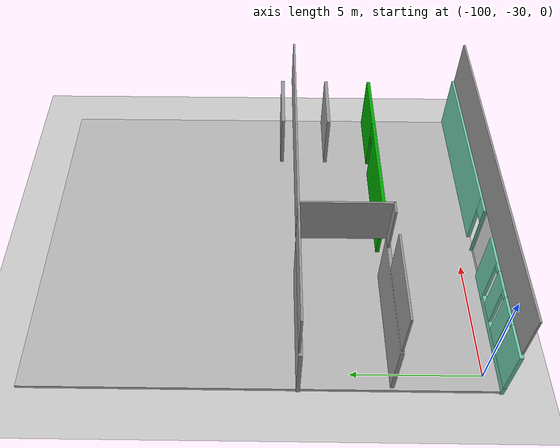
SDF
<sdf version="1.7">
 <world name="default">
  <model name="ground_plane">
   <static>1</static>
   <link name="link">
    <collision name="collision">
     <geometry><plane><normal>0 0 1</normal><size>100 100</size></plane></geometry>
     <surface><friction><ode><mu>100</mu><mu2>50</mu2></ode></friction></surface>
    </collision>
    <visual name="visual">
     <cast_shadows>0</cast_shadows>
     <geometry><plane><normal>0 0 1</normal><size>100 100</size></plane></geometry>
     <material>
      <script><uri>file://media/materials/scripts/gazebo.material</uri><name>Gazebo/Grey</name></script>
     </material>
    </visual>
   </link>
  </model>
  <model name="33333osrf_elevator">
   <link name="Wall_10">
    <pose>3.11003 -4.9485 0 0 -0 0</pose>
    <visual name="Wall_10_Visual_0">
     <meta><layer>0</layer></meta>
     <pose>-1.73626 0 1.3715 0 -0 0</pose>
     <geometry><box><size>4.52747 0.15 2.743</size></box></geometry>
     <material>
      <script><uri>file://media/materials/scripts/gazebo.material</uri><name>Gazebo/Grey</name></script>
      <ambient>0 0.666667 0 1</ambient>
      <shader type="pixel"/>
     </material>
    </visual>
    <visual name="Wall_10_Visual_1">
     <meta><layer>0</layer></meta>
     <pose>2.58694 0 1.3715 0 -0 0</pose>
     <geometry><box><size>2.82611 0.15 2.743</size></box></geometry>
     <material>
      <script><uri>file://media/materials/scripts/gazebo.material</uri><name>Gazebo/Grey</name></script>
      <ambient>0 0.666667 0 1</ambient>
      <shader type="pixel"/>
     </material>
    </visual>
    <visual name="Wall_10_Visual_2">
     <meta><layer>0</layer></meta>
     <pose>0.85068 0 2.3715 0 -0 0</pose>
     <geometry><box><size>0.646413 0.15 0.743</size></box></geometry>
     <material>
      <script><uri>file://media/materials/scripts/gazebo.material</uri><name>Gazebo/Grey</name></script>
      <ambient>0 0.666667 0 1</ambient>
      <shader type="pixel"/>
     </material>
    </visual>
    <collision name="Wall_10_Collision_0">
     <pose>-1.73626 0 1.3715 0 -0 0</pose>
     <geometry><box><size>4.52747 0.15 2.743</size></box></geometry>
     <surface>
      <friction>
       <ode><mu>1</mu><mu2>1</mu2><fdir1>0 0 0</fdir1><slip1>0</slip1><slip2>0</slip2></ode>
       <torsional>
        <coefficient>1</coefficient>
        <patch_radius>0</patch_radius>
        <surface_radius>0</surface_radius>
        <use_patch_radius>1</use_patch_radius>
        <ode><slip>0</slip></ode>
       </torsional>
      </friction>
      <bounce><restitution_coefficient>0</restitution_coefficient><threshold>1e+06</threshold></bounce>
      <contact>
       <collide_without_contact>0</collide_without_contact>
       <collide_without_contact_bitmask>1</collide_without_contact_bitmask>
       <collide_bitmask>1</collide_bitmask>
       <ode>
        <soft_cfm>0</soft_cfm>
        <soft_erp>0.2</soft_erp>
        <kp>1e+13</kp>
        <kd>1</kd>
        <max_vel>0.01</max_vel>
        <min_depth>0</min_depth>
       </ode>
       <bullet>
        <split_impulse>1</split_impulse>
        <split_impulse_penetration_threshold>-0.01</split_impulse_penetration_threshold>
        <soft_cfm>0</soft_cfm>
        <soft_erp>0.2</soft_erp>
        <kp>1e+13</kp>
        <kd>1</kd>
       </bullet>
      </contact>
     </surface>
    </collision>
    <collision name="Wall_10_Collision_1">
     <pose>2.58694 0 1.3715 0 -0 0</pose>
     <geometry><box><size>2.82611 0.15 2.743</size></box></geometry>
     <surface>
      <friction>
       <ode><mu>1</mu><mu2>1</mu2><fdir1>0 0 0</fdir1><slip1>0</slip1><slip2>0</slip2></ode>
       <torsional>
        <coefficient>1</coefficient>
        <patch_radius>0</patch_radius>
        <surface_radius>0</surface_radius>
        <use_patch_radius>1</use_patch_radius>
        <ode><slip>0</slip></ode>
       </torsional>
      </friction>
      <bounce><restitution_coefficient>0</restitution_coefficient><threshold>1e+06</threshold></bounce>
      <contact>
       <collide_without_contact>0</collide_without_contact>
       <collide_without_contact_bitmask>1</collide_without_contact_bitmask>
       <collide_bitmask>1</collide_bitmask>
       <ode>
        <soft_cfm>0</soft_cfm>
        <soft_erp>0.2</soft_erp>
        <kp>1e+13</kp>
        <kd>1</kd>
        <max_vel>0.01</max_vel>
        <min_depth>0</min_depth>
       </ode>
       <bullet>
        <split_impulse>1</split_impulse>
        <split_impulse_penetration_threshold>-0.01</split_impulse_penetration_threshold>
        <soft_cfm>0</soft_cfm>
        <soft_erp>0.2</soft_erp>
        <kp>1e+13</kp>
        <kd>1</kd>
       </bullet>
      </contact>
     </surface>
    </collision>
    <collision name="Wall_10_Collision_2">
     <pose>0.85068 0 2.3715 0 -0 0</pose>
     <geometry><box><size>0.646413 0.15 0.743</size></box></geometry>
     <surface>
      <friction>
       <ode><mu>1</mu><mu2>1</mu2><fdir1>0 0 0</fdir1><slip1>0</slip1><slip2>0</slip2></ode>
       <torsional>
        <coefficient>1</coefficient>
        <patch_radius>0</patch_radius>
        <surface_radius>0</surface_radius>
        <use_patch_radius>1</use_patch_radius>
        <ode><slip>0</slip></ode>
       </torsional>
      </friction>
      <bounce><restitution_coefficient>0</restitution_coefficient><threshold>1e+06</threshold></bounce>
      <contact>
       <collide_without_contact>0</collide_without_contact>
       <collide_without_contact_bitmask>1</collide_without_contact_bitmask>
       <collide_bitmask>1</collide_bitmask>
       <ode>
        <soft_cfm>0</soft_cfm>
        <soft_erp>0.2</soft_erp>
        <kp>1e+13</kp>
        <kd>1</kd>
        <max_vel>0.01</max_vel>
        <min_depth>0</min_depth>
       </ode>
       <bullet>
        <split_impulse>1</split_impulse>
        <split_impulse_penetration_threshold>-0.01</split_impulse_penetration_threshold>
        <soft_cfm>0</soft_cfm>
        <soft_erp>0.2</soft_erp>
        <kp>1e+13</kp>
        <kd>1</kd>
       </bullet>
      </contact>
     </surface>
    </collision>
   </link>
   <link name="Wall_16">
    <pose>-4.68247 -1.4425 0 0 -0 0</pose>
    <visual name="Wall_16_Visual">
     <meta><layer>0</layer></meta>
     <pose>0 0 1.3715 0 -0 0</pose>
     <geometry><box><size>5.12727 0.15 2.743</size></box></geometry>
     <material>
      <script><uri>file://media/materials/scripts/gazebo.material</uri><name>Gazebo/Grey</name></script>
      <ambient>1 1 1 1</ambient>
      <shader type="pixel"/>
     </material>
    </visual>
    <collision name="Wall_16_Collision">
     <pose>0 0 1.3715 0 -0 0</pose>
     <geometry><box><size>5.12727 0.15 2.743</size></box></geometry>
     <surface>
      <friction>
       <ode><mu>1</mu><mu2>1</mu2><fdir1>0 0 0</fdir1><slip1>0</slip1><slip2>0</slip2></ode>
       <torsional>
        <coefficient>1</coefficient>
        <patch_radius>0</patch_radius>
        <surface_radius>0</surface_radius>
        <use_patch_radius>1</use_patch_radius>
        <ode><slip>0</slip></ode>
       </torsional>
      </friction>
      <bounce><restitution_coefficient>0</restitution_coefficient><threshold>1e+06</threshold></bounce>
      <contact>
       <collide_without_contact>0</collide_without_contact>
       <collide_without_contact_bitmask>1</collide_without_contact_bitmask>
       <collide_bitmask>1</collide_bitmask>
       <ode>
        <soft_cfm>0</soft_cfm>
        <soft_erp>0.2</soft_erp>
        <kp>1e+13</kp>
        <kd>1</kd>
        <max_vel>0.01</max_vel>
        <min_depth>0</min_depth>
       </ode>
       <bullet>
        <split_impulse>1</split_impulse>
        <split_impulse_penetration_threshold>-0.01</split_impulse_penetration_threshold>
        <soft_cfm>0</soft_cfm>
        <soft_erp>0.2</soft_erp>
        <kp>1e+13</kp>
        <kd>1</kd>
       </bullet>
      </contact>
     </surface>
    </collision>
   </link>
   <link name="Wall_18">
    <pose>-4.61297 -4.9275 0 0 -0 3.14159</pose>
    <visual name="Wall_18_Visual">
     <meta><layer>0</layer></meta>
     <pose>0 0 1.3715 0 -0 0</pose>
     <geometry><box><size>5 0.15 2.743</size></box></geometry>
     <material>
      <script><uri>file://media/materials/scripts/gazebo.material</uri><name>Gazebo/Grey</name></script>
      <ambient>1 1 1 1</ambient>
      <shader type="pixel"/>
     </material>
    </visual>
    <collision name="Wall_18_Collision">
     <pose>0 0 1.3715 0 -0 0</pose>
     <geometry><box><size>5 0.15 2.743</size></box></geometry>
     <surface>
      <friction>
       <ode><mu>1</mu><mu2>1</mu2><fdir1>0 0 0</fdir1><slip1>0</slip1><slip2>0</slip2></ode>
       <torsional>
        <coefficient>1</coefficient>
        <patch_radius>0</patch_radius>
        <surface_radius>0</surface_radius>
        <use_patch_radius>1</use_patch_radius>
        <ode><slip>0</slip></ode>
       </torsional>
      </friction>
      <bounce><restitution_coefficient>0</restitution_coefficient><threshold>1e+06</threshold></bounce>
      <contact>
       <collide_without_contact>0</collide_without_contact>
       <collide_without_contact_bitmask>1</collide_without_contact_bitmask>
       <collide_bitmask>1</collide_bitmask>
       <ode>
        <soft_cfm>0</soft_cfm>
        <soft_erp>0.2</soft_erp>
        <kp>1e+13</kp>
        <kd>1</kd>
        <max_vel>0.01</max_vel>
        <min_depth>0</min_depth>
       </ode>
       <bullet>
        <split_impulse>1</split_impulse>
        <split_impulse_penetration_threshold>-0.01</split_impulse_penetration_threshold>
        <soft_cfm>0</soft_cfm>
        <soft_erp>0.2</soft_erp>
        <kp>1e+13</kp>
        <kd>1</kd>
       </bullet>
      </contact>
     </surface>
    </collision>
   </link>
   <link name="Wall_23">
    <pose>5.74203 -2.9565 0 0 -0 0</pose>
    <visual name="Wall_23_Visual">
     <meta><layer>0</layer></meta>
     <pose>0 0 1.3715 0 -0 0</pose>
     <geometry><box><size>2.75 0.15 2.743</size></box></geometry>
     <material>
      <script><uri>file://media/materials/scripts/gazebo.material</uri><name>Gazebo/Grey</name></script>
      <ambient>1 1 1 1</ambient>
      <shader type="pixel"/>
     </material>
    </visual>
    <collision name="Wall_23_Collision">
     <pose>0 0 1.3715 0 -0 0</pose>
     <geometry><box><size>2.75 0.15 2.743</size></box></geometry>
     <surface>
      <friction>
       <ode><mu>1</mu><mu2>1</mu2><fdir1>0 0 0</fdir1><slip1>0</slip1><slip2>0</slip2></ode>
       <torsional>
        <coefficient>1</coefficient>
        <patch_radius>0</patch_radius>
        <surface_radius>0</surface_radius>
        <use_patch_radius>1</use_patch_radius>
        <ode><slip>0</slip></ode>
       </torsional>
      </friction>
      <bounce><restitution_coefficient>0</restitution_coefficient><threshold>1e+06</threshold></bounce>
      <contact>
       <collide_without_contact>0</collide_without_contact>
       <collide_without_contact_bitmask>1</collide_without_contact_bitmask>
       <collide_bitmask>1</collide_bitmask>
       <ode>
        <soft_cfm>0</soft_cfm>
        <soft_erp>0.2</soft_erp>
        <kp>1e+13</kp>
        <kd>1</kd>
        <max_vel>0.01</max_vel>
        <min_depth>0</min_depth>
       </ode>
       <bullet>
        <split_impulse>1</split_impulse>
        <split_impulse_penetration_threshold>-0.01</split_impulse_penetration_threshold>
        <soft_cfm>0</soft_cfm>
        <soft_erp>0.2</soft_erp>
        <kp>1e+13</kp>
        <kd>1</kd>
       </bullet>
      </contact>
     </surface>
    </collision>
   </link>
   <link name="Wall_25">
    <pose>5.76203 -0.932495 0 0 -0 0</pose>
    <visual name="Wall_25_Visual">
     <meta><layer>0</layer></meta>
     <pose>0 0 1.3715 0 -0 0</pose>
     <geometry><box><size>2.75 0.15 2.743</size></box></geometry>
     <material>
      <script><uri>file://media/materials/scripts/gazebo.material</uri><name>Gazebo/Grey</name></script>
      <ambient>1 1 1 1</ambient>
      <shader type="pixel"/>
     </material>
    </visual>
    <collision name="Wall_25_Collision">
     <pose>0 0 1.3715 0 -0 0</pose>
     <geometry><box><size>2.75 0.15 2.743</size></box></geometry>
     <surface>
      <friction>
       <ode><mu>1</mu><mu2>1</mu2><fdir1>0 0 0</fdir1><slip1>0</slip1><slip2>0</slip2></ode>
       <torsional>
        <coefficient>1</coefficient>
        <patch_radius>0</patch_radius>
        <surface_radius>0</surface_radius>
        <use_patch_radius>1</use_patch_radius>
        <ode><slip>0</slip></ode>
       </torsional>
      </friction>
      <bounce><restitution_coefficient>0</restitution_coefficient><threshold>1e+06</threshold></bounce>
      <contact>
       <collide_without_contact>0</collide_without_contact>
       <collide_without_contact_bitmask>1</collide_without_contact_bitmask>
       <collide_bitmask>1</collide_bitmask>
       <ode>
        <soft_cfm>0</soft_cfm>
        <soft_erp>0.2</soft_erp>
        <kp>1e+13</kp>
        <kd>1</kd>
        <max_vel>0.01</max_vel>
        <min_depth>0</min_depth>
       </ode>
       <bullet>
        <split_impulse>1</split_impulse>
        <split_impulse_penetration_threshold>-0.01</split_impulse_penetration_threshold>
        <soft_cfm>0</soft_cfm>
        <soft_erp>0.2</soft_erp>
        <kp>1e+13</kp>
        <kd>1</kd>
       </bullet>
      </contact>
     </surface>
    </collision>
   </link>
   <link name="Wall_6">
    <pose>0.00703 -8.9695 0 0 -0 3.14159</pose>
    <visual name="Wall_6_Visual_0">
     <meta><layer>0</layer></meta>
     <pose>-3.60425 0 1.365 0 -0 0</pose>
     <geometry><box><size>7.2915 0.15 2.73</size></box></geometry>
     <material>
      <script><uri>file://media/materials/scripts/gazebo.material</uri><name>Gazebo/Grey</name></script>
      <ambient>0.435294 0.796078 0.67451 1</ambient>
      <shader type="pixel"/>
     </material>
    </visual>
    <visual name="Wall_6_Visual_1">
     <meta><layer>0</layer></meta>
     <pose>0.726241 0 1.365 0 -0 0</pose>
     <geometry><box><size>0.056893 0.15 2.73</size></box></geometry>
     <material>
      <script><uri>file://media/materials/scripts/gazebo.material</uri><name>Gazebo/Grey</name></script>
      <ambient>0.435294 0.796078 0.67451 1</ambient>
      <shader type="pixel"/>
     </material>
    </visual>
    <visual name="Wall_6_Visual_4">
     <meta><layer>0</layer></meta>
     <pose>5.24871 0 0.25 0 -0 0</pose>
     <geometry><box><size>4.00258 0.15 0.5</size></box></geometry>
     <material>
      <script><uri>file://media/materials/scripts/gazebo.material</uri><name>Gazebo/Grey</name></script>
      <ambient>0.435294 0.796078 0.67451 1</ambient>
      <shader type="pixel"/>
     </material>
    </visual>
    <visual name="Wall_6_Visual_2">
     <meta><layer>0</layer></meta>
     <pose>2.65105 0 1.365 0 -0 0</pose>
     <geometry><box><size>1.19273 0.15 2.73</size></box></geometry>
     <material>
      <script><uri>file://media/materials/scripts/gazebo.material</uri><name>Gazebo/Grey</name></script>
      <ambient>0.435294 0.796078 0.67451 1</ambient>
      <shader type="pixel"/>
     </material>
    </visual>
    <visual name="Wall_6_Visual_5">
     <meta><layer>0</layer></meta>
     <pose>4.0419 0 1.615 0 -0 0</pose>
     <geometry><box><size>0.828969 0.15 2.23</size></box></geometry>
     <material>
      <script><uri>file://media/materials/scripts/gazebo.material</uri><name>Gazebo/Grey</name></script>
      <ambient>0.435294 0.796078 0.67451 1</ambient>
      <shader type="pixel"/>
     </material>
    </visual>
    <visual name="Wall_6_Visual_6">
     <meta><layer>0</layer></meta>
     <pose>5.18099 0 1.615 0 -0 0</pose>
     <geometry><box><size>0.819207 0.15 2.23</size></box></geometry>
     <material>
      <script><uri>file://media/materials/scripts/gazebo.material</uri><name>Gazebo/Grey</name></script>
      <ambient>0.435294 0.796078 0.67451 1</ambient>
      <shader type="pixel"/>
     </material>
    </visual>
    <visual name="Wall_6_Visual_7">
     <meta><layer>0</layer></meta>
     <pose>6.58056 0 1.615 0 -0 0</pose>
     <geometry><box><size>1.33888 0.15 2.23</size></box></geometry>
     <material>
      <script><uri>file://media/materials/scripts/gazebo.material</uri><name>Gazebo/Grey</name></script>
      <ambient>0.435294 0.796078 0.67451 1</ambient>
      <shader type="pixel"/>
     </material>
    </visual>
    <visual name="Wall_6_Visual_8">
     <meta><layer>0</layer></meta>
     <pose>0.369648 0 2.365 0 -0 0</pose>
     <geometry><box><size>0.656294 0.15 0.73</size></box></geometry>
     <material>
      <script><uri>file://media/materials/scripts/gazebo.material</uri><name>Gazebo/Grey</name></script>
      <ambient>0.435294 0.796078 0.67451 1</ambient>
      <shader type="pixel"/>
     </material>
    </visual>
    <visual name="Wall_6_Visual_9">
     <meta><layer>0</layer></meta>
     <pose>3.43742 0 2.615 0 -0 0</pose>
     <geometry><box><size>0.38 0.15 0.23</size></box></geometry>
     <material>
      <script><uri>file://media/materials/scripts/gazebo.material</uri><name>Gazebo/Grey</name></script>
      <ambient>0.435294 0.796078 0.67451 1</ambient>
      <shader type="pixel"/>
     </material>
    </visual>
    <visual name="Wall_6_Visual_10">
     <meta><layer>0</layer></meta>
     <pose>4.61389 0 2.615 0 -0 0</pose>
     <geometry><box><size>0.315 0.15 0.23</size></box></geometry>
     <material>
      <script><uri>file://media/materials/scripts/gazebo.material</uri><name>Gazebo/Grey</name></script>
      <ambient>0.435294 0.796078 0.67451 1</ambient>
      <shader type="pixel"/>
     </material>
    </visual>
    <visual name="Wall_6_Visual_11">
     <meta><layer>0</layer></meta>
     <pose>5.75086 0 2.615 0 -0 0</pose>
     <geometry><box><size>0.320532 0.15 0.23</size></box></geometry>
     <material>
      <script><uri>file://media/materials/scripts/gazebo.material</uri><name>Gazebo/Grey</name></script>
      <ambient>0.435294 0.796078 0.67451 1</ambient>
      <shader type="pixel"/>
     </material>
    </visual>
    <collision name="Wall_6_Collision_0">
     <pose>-3.60425 0 1.365 0 -0 0</pose>
     <geometry><box><size>7.2915 0.15 2.73</size></box></geometry>
     <surface>
      <friction>
       <ode><mu>1</mu><mu2>1</mu2><fdir1>0 0 0</fdir1><slip1>0</slip1><slip2>0</slip2></ode>
       <torsional>
        <coefficient>1</coefficient>
        <patch_radius>0</patch_radius>
        <surface_radius>0</surface_radius>
        <use_patch_radius>1</use_patch_radius>
        <ode><slip>0</slip></ode>
       </torsional>
      </friction>
      <bounce><restitution_coefficient>0</restitution_coefficient><threshold>1e+06</threshold></bounce>
      <contact>
       <collide_without_contact>0</collide_without_contact>
       <collide_without_contact_bitmask>1</collide_without_contact_bitmask>
       <collide_bitmask>1</collide_bitmask>
       <ode>
        <soft_cfm>0</soft_cfm>
        <soft_erp>0.2</soft_erp>
        <kp>1e+13</kp>
        <kd>1</kd>
        <max_vel>0.01</max_vel>
        <min_depth>0</min_depth>
       </ode>
       <bullet>
        <split_impulse>1</split_impulse>
        <split_impulse_penetration_threshold>-0.01</split_impulse_penetration_threshold>
        <soft_cfm>0</soft_cfm>
        <soft_erp>0.2</soft_erp>
        <kp>1e+13</kp>
        <kd>1</kd>
       </bullet>
      </contact>
     </surface>
    </collision>
    <collision name="Wall_6_Collision_1">
     <pose>0.726241 0 1.365 0 -0 0</pose>
     <geometry><box><size>0.056893 0.15 2.73</size></box></geometry>
     <surface>
      <friction>
       <ode><mu>1</mu><mu2>1</mu2><fdir1>0 0 0</fdir1><slip1>0</slip1><slip2>0</slip2></ode>
       <torsional>
        <coefficient>1</coefficient>
        <patch_radius>0</patch_radius>
        <surface_radius>0</surface_radius>
        <use_patch_radius>1</use_patch_radius>
        <ode><slip>0</slip></ode>
       </torsional>
      </friction>
      <bounce><restitution_coefficient>0</restitution_coefficient><threshold>1e+06</threshold></bounce>
      <contact>
       <collide_without_contact>0</collide_without_contact>
       <collide_without_contact_bitmask>1</collide_without_contact_bitmask>
       <collide_bitmask>1</collide_bitmask>
       <ode>
        <soft_cfm>0</soft_cfm>
        <soft_erp>0.2</soft_erp>
        <kp>1e+13</kp>
        <kd>1</kd>
        <max_vel>0.01</max_vel>
        <min_depth>0</min_depth>
       </ode>
       <bullet>
        <split_impulse>1</split_impulse>
        <split_impulse_penetration_threshold>-0.01</split_impulse_penetration_threshold>
        <soft_cfm>0</soft_cfm>
        <soft_erp>0.2</soft_erp>
        <kp>1e+13</kp>
        <kd>1</kd>
       </bullet>
      </contact>
     </surface>
    </collision>
    <collision name="Wall_6_Collision_2">
     <pose>2.65105 0 1.365 0 -0 0</pose>
     <geometry><box><size>1.19273 0.15 2.73</size></box></geometry>
     <surface>
      <friction>
       <ode><mu>1</mu><mu2>1</mu2><fdir1>0 0 0</fdir1><slip1>0</slip1><slip2>0</slip2></ode>
       <torsional>
        <coefficient>1</coefficient>
        <patch_radius>0</patch_radius>
        <surface_radius>0</surface_radius>
        <use_patch_radius>1</use_patch_radius>
        <ode><slip>0</slip></ode>
       </torsional>
      </friction>
      <bounce><restitution_coefficient>0</restitution_coefficient><threshold>1e+06</threshold></bounce>
      <contact>
       <collide_without_contact>0</collide_without_contact>
       <collide_without_contact_bitmask>1</collide_without_contact_bitmask>
       <collide_bitmask>1</collide_bitmask>
       <ode>
        <soft_cfm>0</soft_cfm>
        <soft_erp>0.2</soft_erp>
        <kp>1e+13</kp>
        <kd>1</kd>
        <max_vel>0.01</max_vel>
        <min_depth>0</min_depth>
       </ode>
       <bullet>
        <split_impulse>1</split_impulse>
        <split_impulse_penetration_threshold>-0.01</split_impulse_penetration_threshold>
        <soft_cfm>0</soft_cfm>
        <soft_erp>0.2</soft_erp>
        <kp>1e+13</kp>
        <kd>1</kd>
       </bullet>
      </contact>
     </surface>
    </collision>
    <collision name="Wall_6_Collision_4">
     <pose>5.24871 0 0.25 0 -0 0</pose>
     <geometry><box><size>4.00258 0.15 0.5</size></box></geometry>
     <surface>
      <friction>
       <ode><mu>1</mu><mu2>1</mu2><fdir1>0 0 0</fdir1><slip1>0</slip1><slip2>0</slip2></ode>
       <torsional>
        <coefficient>1</coefficient>
        <patch_radius>0</patch_radius>
        <surface_radius>0</surface_radius>
        <use_patch_radius>1</use_patch_radius>
        <ode><slip>0</slip></ode>
       </torsional>
      </friction>
      <bounce><restitution_coefficient>0</restitution_coefficient><threshold>1e+06</threshold></bounce>
      <contact>
       <collide_without_contact>0</collide_without_contact>
       <collide_without_contact_bitmask>1</collide_without_contact_bitmask>
       <collide_bitmask>1</collide_bitmask>
       <ode>
        <soft_cfm>0</soft_cfm>
        <soft_erp>0.2</soft_erp>
        <kp>1e+13</kp>
        <kd>1</kd>
        <max_vel>0.01</max_vel>
        <min_depth>0</min_depth>
       </ode>
       <bullet>
        <split_impulse>1</split_impulse>
        <split_impulse_penetration_threshold>-0.01</split_impulse_penetration_threshold>
        <soft_cfm>0</soft_cfm>
        <soft_erp>0.2</soft_erp>
        <kp>1e+13</kp>
        <kd>1</kd>
       </bullet>
      </contact>
     </surface>
    </collision>
    <collision name="Wall_6_Collision_5">
     <pose>4.0419 0 1.615 0 -0 0</pose>
     <geometry><box><size>0.828969 0.15 2.23</size></box></geometry>
     <surface>
      <friction>
       <ode><mu>1</mu><mu2>1</mu2><fdir1>0 0 0</fdir1><slip1>0</slip1><slip2>0</slip2></ode>
       <torsional>
        <coefficient>1</coefficient>
        <patch_radius>0</patch_radius>
        <surface_radius>0</surface_radius>
        <use_patch_radius>1</use_patch_radius>
        <ode><slip>0</slip></ode>
       </torsional>
      </friction>
      <bounce><restitution_coefficient>0</restitution_coefficient><threshold>1e+06</threshold></bounce>
      <contact>
       <collide_without_contact>0</collide_without_contact>
       <collide_without_contact_bitmask>1</collide_without_contact_bitmask>
       <collide_bitmask>1</collide_bitmask>
       <ode>
        <soft_cfm>0</soft_cfm>
        <soft_erp>0.2</soft_erp>
        <kp>1e+13</kp>
        <kd>1</kd>
        <max_vel>0.01</max_vel>
        <min_depth>0</min_depth>
       </ode>
       <bullet>
        <split_impulse>1</split_impulse>
        <split_impulse_penetration_threshold>-0.01</split_impulse_penetration_threshold>
        <soft_cfm>0</soft_cfm>
        <soft_erp>0.2</soft_erp>
        <kp>1e+13</kp>
        <kd>1</kd>
       </bullet>
      </contact>
     </surface>
    </collision>
    <collision name="Wall_6_Collision_6">
     <pose>5.18099 0 1.615 0 -0 0</pose>
     <geometry><box><size>0.819207 0.15 2.23</size></box></geometry>
     <surface>
      <friction>
       <ode><mu>1</mu><mu2>1</mu2><fdir1>0 0 0</fdir1><slip1>0</slip1><slip2>0</slip2></ode>
       <torsional>
        <coefficient>1</coefficient>
        <patch_radius>0</patch_radius>
        <surface_radius>0</surface_radius>
        <use_patch_radius>1</use_patch_radius>
        <ode><slip>0</slip></ode>
       </torsional>
      </friction>
      <bounce><restitution_coefficient>0</restitution_coefficient><threshold>1e+06</threshold></bounce>
      <contact>
       <collide_without_contact>0</collide_without_contact>
       <collide_without_contact_bitmask>1</collide_without_contact_bitmask>
       <collide_bitmask>1</collide_bitmask>
       <ode>
        <soft_cfm>0</soft_cfm>
        <soft_erp>0.2</soft_erp>
        <kp>1e+13</kp>
        <kd>1</kd>
        <max_vel>0.01</max_vel>
        <min_depth>0</min_depth>
       </ode>
       <bullet>
        <split_impulse>1</split_impulse>
        <split_impulse_penetration_threshold>-0.01</split_impulse_penetration_threshold>
        <soft_cfm>0</soft_cfm>
        <soft_erp>0.2</soft_erp>
        <kp>1e+13</kp>
        <kd>1</kd>
       </bullet>
      </contact>
     </surface>
    </collision>
    <collision name="Wall_6_Collision_8">
     <pose>0.369648 0 2.365 0 -0 0</pose>
     <geometry><box><size>0.656294 0.15 0.73</size></box></geometry>
     <surface>
      <friction>
       <ode><mu>1</mu><mu2>1</mu2><fdir1>0 0 0</fdir1><slip1>0</slip1><slip2>0</slip2></ode>
       <torsional>
        <coefficient>1</coefficient>
        <patch_radius>0</patch_radius>
        <surface_radius>0</surface_radius>
        <use_patch_radius>1</use_patch_radius>
        <ode><slip>0</slip></ode>
       </torsional>
      </friction>
      <bounce><restitution_coefficient>0</restitution_coefficient><threshold>1e+06</threshold></bounce>
      <contact>
       <collide_without_contact>0</collide_without_contact>
       <collide_without_contact_bitmask>1</collide_without_contact_bitmask>
       <collide_bitmask>1</collide_bitmask>
       <ode>
        <soft_cfm>0</soft_cfm>
        <soft_erp>0.2</soft_erp>
        <kp>1e+13</kp>
        <kd>1</kd>
        <max_vel>0.01</max_vel>
        <min_depth>0</min_depth>
       </ode>
       <bullet>
        <split_impulse>1</split_impulse>
        <split_impulse_penetration_threshold>-0.01</split_impulse_penetration_threshold>
        <soft_cfm>0</soft_cfm>
        <soft_erp>0.2</soft_erp>
        <kp>1e+13</kp>
        <kd>1</kd>
       </bullet>
      </contact>
     </surface>
    </collision>
    <collision name="Wall_6_Collision_7">
     <pose>6.58056 0 1.615 0 -0 0</pose>
     <geometry><box><size>1.33888 0.15 2.23</size></box></geometry>
     <surface>
      <friction>
       <ode><mu>1</mu><mu2>1</mu2><fdir1>0 0 0</fdir1><slip1>0</slip1><slip2>0</slip2></ode>
       <torsional>
        <coefficient>1</coefficient>
        <patch_radius>0</patch_radius>
        <surface_radius>0</surface_radius>
        <use_patch_radius>1</use_patch_radius>
        <ode><slip>0</slip></ode>
       </torsional>
      </friction>
      <bounce><restitution_coefficient>0</restitution_coefficient><threshold>1e+06</threshold></bounce>
      <contact>
       <collide_without_contact>0</collide_without_contact>
       <collide_without_contact_bitmask>1</collide_without_contact_bitmask>
       <collide_bitmask>1</collide_bitmask>
       <ode>
        <soft_cfm>0</soft_cfm>
        <soft_erp>0.2</soft_erp>
        <kp>1e+13</kp>
        <kd>1</kd>
        <max_vel>0.01</max_vel>
        <min_depth>0</min_depth>
       </ode>
       <bullet>
        <split_impulse>1</split_impulse>
        <split_impulse_penetration_threshold>-0.01</split_impulse_penetration_threshold>
        <soft_cfm>0</soft_cfm>
        <soft_erp>0.2</soft_erp>
        <kp>1e+13</kp>
        <kd>1</kd>
       </bullet>
      </contact>
     </surface>
    </collision>
    <collision name="Wall_6_Collision_9">
     <pose>3.43742 0 2.615 0 -0 0</pose>
     <geometry><box><size>0.38 0.15 0.23</size></box></geometry>
     <surface>
      <friction>
       <ode><mu>1</mu><mu2>1</mu2><fdir1>0 0 0</fdir1><slip1>0</slip1><slip2>0</slip2></ode>
       <torsional>
        <coefficient>1</coefficient>
        <patch_radius>0</patch_radius>
        <surface_radius>0</surface_radius>
        <use_patch_radius>1</use_patch_radius>
        <ode><slip>0</slip></ode>
       </torsional>
      </friction>
      <bounce><restitution_coefficient>0</restitution_coefficient><threshold>1e+06</threshold></bounce>
      <contact>
       <collide_without_contact>0</collide_without_contact>
       <collide_without_contact_bitmask>1</collide_without_contact_bitmask>
       <collide_bitmask>1</collide_bitmask>
       <ode>
        <soft_cfm>0</soft_cfm>
        <soft_erp>0.2</soft_erp>
        <kp>1e+13</kp>
        <kd>1</kd>
        <max_vel>0.01</max_vel>
        <min_depth>0</min_depth>
       </ode>
       <bullet>
        <split_impulse>1</split_impulse>
        <split_impulse_penetration_threshold>-0.01</split_impulse_penetration_threshold>
        <soft_cfm>0</soft_cfm>
        <soft_erp>0.2</soft_erp>
        <kp>1e+13</kp>
        <kd>1</kd>
       </bullet>
      </contact>
     </surface>
    </collision>
    <collision name="Wall_6_Collision_10">
     <pose>4.61389 0 2.615 0 -0 0</pose>
     <geometry><box><size>0.315 0.15 0.23</size></box></geometry>
     <surface>
      <friction>
       <ode><mu>1</mu><mu2>1</mu2><fdir1>0 0 0</fdir1><slip1>0</slip1><slip2>0</slip2></ode>
       <torsional>
        <coefficient>1</coefficient>
        <patch_radius>0</patch_radius>
        <surface_radius>0</surface_radius>
        <use_patch_radius>1</use_patch_radius>
        <ode><slip>0</slip></ode>
       </torsional>
      </friction>
      <bounce><restitution_coefficient>0</restitution_coefficient><threshold>1e+06</threshold></bounce>
      <contact>
       <collide_without_contact>0</collide_without_contact>
       <collide_without_contact_bitmask>1</collide_without_contact_bitmask>
       <collide_bitmask>1</collide_bitmask>
       <ode>
        <soft_cfm>0</soft_cfm>
        <soft_erp>0.2</soft_erp>
        <kp>1e+13</kp>
        <kd>1</kd>
        <max_vel>0.01</max_vel>
        <min_depth>0</min_depth>
       </ode>
       <bullet>
        <split_impulse>1</split_impulse>
        <split_impulse_penetration_threshold>-0.01</split_impulse_penetration_threshold>
        <soft_cfm>0</soft_cfm>
        <soft_erp>0.2</soft_erp>
        <kp>1e+13</kp>
        <kd>1</kd>
       </bullet>
      </contact>
     </surface>
    </collision>
    <collision name="Wall_6_Collision_11">
     <pose>5.75086 0 2.615 0 -0 0</pose>
     <geometry><box><size>0.320532 0.15 0.23</size></box></geometry>
     <surface>
      <friction>
       <ode><mu>1</mu><mu2>1</mu2><fdir1>0 0 0</fdir1><slip1>0</slip1><slip2>0</slip2></ode>
       <torsional>
        <coefficient>1</coefficient>
        <patch_radius>0</patch_radius>
        <surface_radius>0</surface_radius>
        <use_patch_radius>1</use_patch_radius>
        <ode><slip>0</slip></ode>
       </torsional>
      </friction>
      <bounce><restitution_coefficient>0</restitution_coefficient><threshold>1e+06</threshold></bounce>
      <contact>
       <collide_without_contact>0</collide_without_contact>
       <collide_without_contact_bitmask>1</collide_without_contact_bitmask>
       <collide_bitmask>1</collide_bitmask>
       <ode>
        <soft_cfm>0</soft_cfm>
        <soft_erp>0.2</soft_erp>
        <kp>1e+13</kp>
        <kd>1</kd>
        <max_vel>0.01</max_vel>
        <min_depth>0</min_depth>
       </ode>
       <bullet>
        <split_impulse>1</split_impulse>
        <split_impulse_penetration_threshold>-0.01</split_impulse_penetration_threshold>
        <soft_cfm>0</soft_cfm>
        <soft_erp>0.2</soft_erp>
        <kp>1e+13</kp>
        <kd>1</kd>
       </bullet>
      </contact>
     </surface>
    </collision>
   </link>
   <link name="floor1_part10">
    <pose>-2.39225 -4.89435 3.85794 1.5708 -0 0</pose>
    <visual name="visual">
     <meta><layer>1</layer></meta>
     <geometry><box><size>0.519866 2.0998 0.078</size></box></geometry>
     <material><script><name>Gazebo/Grey</name><uri>__default__</uri></script><shader type="pixel"/></material>
    </visual>
    <collision name="collision">
     <geometry><box><size>0.519866 2.0998 0.078</size></box></geometry>
     <surface>
      <friction>
       <ode><mu>1</mu><mu2>1</mu2><fdir1>0 0 0</fdir1><slip1>0</slip1><slip2>0</slip2></ode>
       <torsional>
        <coefficient>1</coefficient>
        <patch_radius>0</patch_radius>
        <surface_radius>0</surface_radius>
        <use_patch_radius>1</use_patch_radius>
        <ode><slip>0</slip></ode>
       </torsional>
      </friction>
      <bounce><restitution_coefficient>0</restitution_coefficient><threshold>1e+06</threshold></bounce>
      <contact>
       <collide_without_contact>0</collide_without_contact>
       <collide_without_contact_bitmask>1</collide_without_contact_bitmask>
       <collide_bitmask>1</collide_bitmask>
       <ode>
        <soft_cfm>0</soft_cfm>
        <soft_erp>0.2</soft_erp>
        <kp>1e+13</kp>
        <kd>1</kd>
        <max_vel>0.01</max_vel>
        <min_depth>0</min_depth>
       </ode>
       <bullet>
        <split_impulse>1</split_impulse>
        <split_impulse_penetration_threshold>-0.01</split_impulse_penetration_threshold>
        <soft_cfm>0</soft_cfm>
        <soft_erp>0.2</soft_erp>
        <kp>1e+13</kp>
        <kd>1</kd>
       </bullet>
      </contact>
     </surface>
    </collision>
   </link>
   <link name="floor1_part11">
    <pose>-2.17305 -3.18058 3.85794 1.5708 0 -1.5708</pose>
    <visual name="visual">
     <meta><layer>1</layer></meta>
     <geometry><box><size>3.4917 2.0998 0.078</size></box></geometry>
     <material><script><name>Gazebo/Grey</name><uri>__default__</uri></script><shader type="pixel"/></material>
    </visual>
    <collision name="collision">
     <geometry><box><size>3.4917 2.0998 0.078</size></box></geometry>
     <surface>
      <friction>
       <ode><mu>1</mu><mu2>1</mu2><fdir1>0 0 0</fdir1><slip1>0</slip1><slip2>0</slip2></ode>
       <torsional>
        <coefficient>1</coefficient>
        <patch_radius>0</patch_radius>
        <surface_radius>0</surface_radius>
        <use_patch_radius>1</use_patch_radius>
        <ode><slip>0</slip></ode>
       </torsional>
      </friction>
      <bounce><restitution_coefficient>0</restitution_coefficient><threshold>1e+06</threshold></bounce>
      <contact>
       <collide_without_contact>0</collide_without_contact>
       <collide_without_contact_bitmask>1</collide_without_contact_bitmask>
       <collide_bitmask>1</collide_bitmask>
       <ode>
        <soft_cfm>0</soft_cfm>
        <soft_erp>0.2</soft_erp>
        <kp>1e+13</kp>
        <kd>1</kd>
        <max_vel>0.01</max_vel>
        <min_depth>0</min_depth>
       </ode>
       <bullet>
        <split_impulse>1</split_impulse>
        <split_impulse_penetration_threshold>-0.01</split_impulse_penetration_threshold>
        <soft_cfm>0</soft_cfm>
        <soft_erp>0.2</soft_erp>
        <kp>1e+13</kp>
        <kd>1</kd>
       </bullet>
      </contact>
     </surface>
    </collision>
   </link>
   <link name="floor1_part5">
    <pose>-4.65046 -1.39728 3.85794 1.5708 -0 0</pose>
    <visual name="visual">
     <meta><layer>1</layer></meta>
     <geometry><box><size>5.03711 2.0998 0.078</size></box></geometry>
     <material><script><name>Gazebo/Grey</name><uri>__default__</uri></script><shader type="pixel"/></material>
    </visual>
    <collision name="collision">
     <geometry><box><size>5.03711 2.0998 0.078</size></box></geometry>
     <surface>
      <friction>
       <ode><mu>1</mu><mu2>1</mu2><fdir1>0 0 0</fdir1><slip1>0</slip1><slip2>0</slip2></ode>
       <torsional>
        <coefficient>1</coefficient>
        <patch_radius>0</patch_radius>
        <surface_radius>0</surface_radius>
        <use_patch_radius>1</use_patch_radius>
        <ode><slip>0</slip></ode>
       </torsional>
      </friction>
      <bounce><restitution_coefficient>0</restitution_coefficient><threshold>1e+06</threshold></bounce>
      <contact>
       <collide_without_contact>0</collide_without_contact>
       <collide_without_contact_bitmask>1</collide_without_contact_bitmask>
       <collide_bitmask>1</collide_bitmask>
       <ode>
        <soft_cfm>0</soft_cfm>
        <soft_erp>0.2</soft_erp>
        <kp>1e+13</kp>
        <kd>1</kd>
        <max_vel>0.01</max_vel>
        <min_depth>0</min_depth>
       </ode>
       <bullet>
        <split_impulse>1</split_impulse>
        <split_impulse_penetration_threshold>-0.01</split_impulse_penetration_threshold>
        <soft_cfm>0</soft_cfm>
        <soft_erp>0.2</soft_erp>
        <kp>1e+13</kp>
        <kd>1</kd>
       </bullet>
      </contact>
     </surface>
    </collision>
   </link>
   <link name="floor1_part7">
    <pose>2.39941 -1.39058 3.85828 1.5708 -0 0</pose>
    <visual name="visual">
     <meta><layer>1</layer></meta>
     <geometry><box><size>9.43026 2.0998 0.078</size></box></geometry>
     <material><script><name>Gazebo/Grey</name><uri>__default__</uri></script><shader type="pixel"/></material>
    </visual>
    <collision name="collision">
     <geometry><box><size>9.43026 2.0998 0.078</size></box></geometry>
     <surface>
      <friction>
       <ode><mu>1</mu><mu2>1</mu2><fdir1>0 0 0</fdir1><slip1>0</slip1><slip2>0</slip2></ode>
       <torsional>
        <coefficient>1</coefficient>
        <patch_radius>0</patch_radius>
        <surface_radius>0</surface_radius>
        <use_patch_radius>1</use_patch_radius>
        <ode><slip>0</slip></ode>
       </torsional>
      </friction>
      <bounce><restitution_coefficient>0</restitution_coefficient><threshold>1e+06</threshold></bounce>
      <contact>
       <collide_without_contact>0</collide_without_contact>
       <collide_without_contact_bitmask>1</collide_without_contact_bitmask>
       <collide_bitmask>1</collide_bitmask>
       <ode>
        <soft_cfm>0</soft_cfm>
        <soft_erp>0.2</soft_erp>
        <kp>1e+13</kp>
        <kd>1</kd>
        <max_vel>0.01</max_vel>
        <min_depth>0</min_depth>
       </ode>
       <bullet>
        <split_impulse>1</split_impulse>
        <split_impulse_penetration_threshold>-0.01</split_impulse_penetration_threshold>
        <soft_cfm>0</soft_cfm>
        <soft_erp>0.2</soft_erp>
        <kp>1e+13</kp>
        <kd>1</kd>
       </bullet>
      </contact>
     </surface>
    </collision>
   </link>
   <link name="floor1_part8">
    <pose>0 -9 3.86461 1.5708 -0 0</pose>
    <visual name="visual">
     <meta><layer>1</layer></meta>
     <geometry><box><size>14.2592 2.0998 0.078</size></box></geometry>
     <material><script><name>Gazebo/Grey</name><uri>__default__</uri></script><shader type="pixel"/></material>
    </visual>
    <collision name="collision">
     <geometry><box><size>14.2592 2.0998 0.078</size></box></geometry>
     <surface>
      <friction>
       <ode><mu>1</mu><mu2>1</mu2><fdir1>0 0 0</fdir1><slip1>0</slip1><slip2>0</slip2></ode>
       <torsional>
        <coefficient>1</coefficient>
        <patch_radius>0</patch_radius>
        <surface_radius>0</surface_radius>
        <use_patch_radius>1</use_patch_radius>
        <ode><slip>0</slip></ode>
       </torsional>
      </friction>
      <bounce><restitution_coefficient>0</restitution_coefficient><threshold>1e+06</threshold></bounce>
      <contact>
       <collide_without_contact>0</collide_without_contact>
       <collide_without_contact_bitmask>1</collide_without_contact_bitmask>
       <collide_bitmask>1</collide_bitmask>
       <ode>
        <soft_cfm>0</soft_cfm>
        <soft_erp>0.2</soft_erp>
        <kp>1e+13</kp>
        <kd>1</kd>
        <max_vel>0.01</max_vel>
        <min_depth>0</min_depth>
       </ode>
       <bullet>
        <split_impulse>1</split_impulse>
        <split_impulse_penetration_threshold>-0.01</split_impulse_penetration_threshold>
        <soft_cfm>0</soft_cfm>
        <soft_erp>0.2</soft_erp>
        <kp>1e+13</kp>
        <kd>1</kd>
       </bullet>
      </contact>
     </surface>
    </collision>
   </link>
   <link name="floor1_part9">
    <pose>-5.36806 -4.90906 3.85794 1.5708 -0 0</pose>
    <visual name="visual">
     <meta><layer>1</layer></meta>
     <geometry><box><size>3.47446 2.0998 0.078</size></box></geometry>
     <material><script><name>Gazebo/Grey</name><uri>__default__</uri></script><shader type="pixel"/></material>
    </visual>
    <collision name="collision">
     <geometry><box><size>3.47446 2.0998 0.078</size></box></geometry>
     <surface>
      <friction>
       <ode><mu>1</mu><mu2>1</mu2><fdir1>0 0 0</fdir1><slip1>0</slip1><slip2>0</slip2></ode>
       <torsional>
        <coefficient>1</coefficient>
        <patch_radius>0</patch_radius>
        <surface_radius>0</surface_radius>
        <use_patch_radius>1</use_patch_radius>
        <ode><slip>0</slip></ode>
       </torsional>
      </friction>
      <bounce><restitution_coefficient>0</restitution_coefficient><threshold>1e+06</threshold></bounce>
      <contact>
       <collide_without_contact>0</collide_without_contact>
       <collide_without_contact_bitmask>1</collide_without_contact_bitmask>
       <collide_bitmask>1</collide_bitmask>
       <ode>
        <soft_cfm>0</soft_cfm>
        <soft_erp>0.2</soft_erp>
        <kp>1e+13</kp>
        <kd>1</kd>
        <max_vel>0.01</max_vel>
        <min_depth>0</min_depth>
       </ode>
       <bullet>
        <split_impulse>1</split_impulse>
        <split_impulse_penetration_threshold>-0.01</split_impulse_penetration_threshold>
        <soft_cfm>0</soft_cfm>
        <soft_erp>0.2</soft_erp>
        <kp>1e+13</kp>
        <kd>1</kd>
       </bullet>
      </contact>
     </surface>
    </collision>
   </link>
   <link name="front_window">
    <pose>-1.42369 -8.99808 1.36421 0 -0 0</pose>
    <visual name="front_window_visual">
     <meta><layer>0</layer></meta>
     <geometry><box><size>1.37422 0.034702 2.72768</size></box></geometry>
     <material>
      <script><name>Gazebo/GreyTransparent</name><uri>__default__</uri></script>
      <shader type="pixel"/>
     </material>
    </visual>
    <collision name="front_window_collision">
     <geometry><box><size>1.37422 0.034702 2.72768</size></box></geometry>
     <surface>
      <friction>
       <ode><mu>1</mu><mu2>1</mu2><fdir1>0 0 0</fdir1><slip1>0</slip1><slip2>0</slip2></ode>
       <torsional>
        <coefficient>1</coefficient>
        <patch_radius>0</patch_radius>
        <surface_radius>0</surface_radius>
        <use_patch_radius>1</use_patch_radius>
        <ode><slip>0</slip></ode>
       </torsional>
      </friction>
      <bounce><restitution_coefficient>0</restitution_coefficient><threshold>1e+06</threshold></bounce>
      <contact>
       <collide_without_contact>0</collide_without_contact>
       <collide_without_contact_bitmask>1</collide_without_contact_bitmask>
       <collide_bitmask>1</collide_bitmask>
       <ode>
        <soft_cfm>0</soft_cfm>
        <soft_erp>0.2</soft_erp>
        <kp>1e+13</kp>
        <kd>1</kd>
        <max_vel>0.01</max_vel>
        <min_depth>0</min_depth>
       </ode>
       <bullet>
        <split_impulse>1</split_impulse>
        <split_impulse_penetration_threshold>-0.01</split_impulse_penetration_threshold>
        <soft_cfm>0</soft_cfm>
        <soft_erp>0.2</soft_erp>
        <kp>1e+13</kp>
        <kd>1</kd>
       </bullet>
      </contact>
     </surface>
    </collision>
   </link>
   <link name="ground_floor">
    <pose>0 0 0.075 0 -0 0</pose>
    <visual name="visual">
     <geometry><box><size>14.4 18.1 0.15</size></box></geometry>
     <material><shader type="pixel"/></material>
    </visual>
    <collision name="collision">
     <geometry><box><size>14.4 18.1 0.15</size></box></geometry>
     <surface>
      <friction>
       <ode><mu>1</mu><mu2>1</mu2><fdir1>0 0 0</fdir1><slip1>0</slip1><slip2>0</slip2></ode>
       <torsional>
        <coefficient>1</coefficient>
        <patch_radius>0</patch_radius>
        <surface_radius>0</surface_radius>
        <use_patch_radius>1</use_patch_radius>
        <ode><slip>0</slip></ode>
       </torsional>
      </friction>
      <bounce><restitution_coefficient>0</restitution_coefficient><threshold>1e+06</threshold></bounce>
      <contact>
       <collide_without_contact>0</collide_without_contact>
       <collide_without_contact_bitmask>1</collide_without_contact_bitmask>
       <collide_bitmask>1</collide_bitmask>
       <ode>
        <soft_cfm>0</soft_cfm>
        <soft_erp>0.2</soft_erp>
        <kp>1e+13</kp>
        <kd>1</kd>
        <max_vel>0.01</max_vel>
        <min_depth>0</min_depth>
       </ode>
       <bullet>
        <split_impulse>1</split_impulse>
        <split_impulse_penetration_threshold>-0.01</split_impulse_penetration_threshold>
        <soft_cfm>0</soft_cfm>
        <soft_erp>0.2</soft_erp>
        <kp>1e+13</kp>
        <kd>1</kd>
       </bullet>
      </contact>
     </surface>
    </collision>
   </link>
   <static>1</static>
   <pose>-93.4835 -21.6 0 0 -0 0</pose>
  </model>
 </world>
</sdf>
